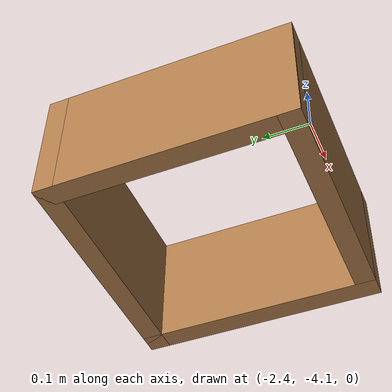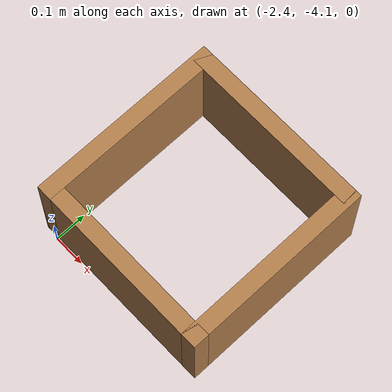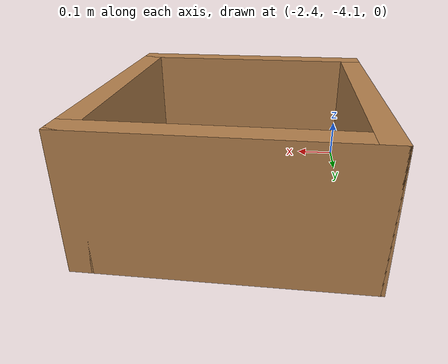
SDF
<?xml version='1.0'?>
<sdf version='1.7'>
  <model name='square60'>
    <pose>-1.2225 -2.0475 0 0 -0 0</pose>
    <link name='Wall_21'>
      <collision name='Wall_21_Collision'>
        <geometry>
          <box>
            <size>0.6 0.05 0.3</size>
          </box>
        </geometry>
        <pose>0 0 0.15 0 -0 0</pose>
      </collision>
      <visual name='Wall_21_Visual'>
        <pose>0 0 0.15 0 -0 0</pose>
        <geometry>
          <box>
            <size>0.6 0.05 0.3</size>
          </box>
        </geometry>
        <material>
          <script>
            <uri>file://media/materials/scripts/gazebo.material</uri>
            <name>Gazebo/Wood</name>
          </script>
          <ambient>1 1 1 1</ambient>
        </material>
        <meta>
          <layer>0</layer>
        </meta>
      </visual>
      <pose>-1.1975 -1.7475 0 0 -0 -1.5708</pose>
    </link>
    <link name='Wall_23'>
      <collision name='Wall_23_Collision'>
        <geometry>
          <box>
            <size>0.6 0.05 0.3</size>
          </box>
        </geometry>
        <pose>0 0 0.15 0 -0 0</pose>
      </collision>
      <visual name='Wall_23_Visual'>
        <pose>0 0 0.15 0 -0 0</pose>
        <geometry>
          <box>
            <size>0.6 0.05 0.3</size>
          </box>
        </geometry>
        <material>
          <script>
            <uri>file://media/materials/scripts/gazebo.material</uri>
            <name>Gazebo/Wood</name>
          </script>
          <ambient>1 1 1 1</ambient>
        </material>
        <meta>
          <layer>0</layer>
        </meta>
      </visual>
      <pose>-0.9225 -2.0225 0 0 -0 0</pose>
    </link>
    <link name='Wall_25'>
      <collision name='Wall_25_Collision'>
        <geometry>
          <box>
            <size>0.6 0.05 0.3</size>
          </box>
        </geometry>
        <pose>0 0 0.15 0 -0 0</pose>
      </collision>
      <visual name='Wall_25_Visual'>
        <pose>0 0 0.15 0 -0 0</pose>
        <geometry>
          <box>
            <size>0.6 0.05 0.3</size>
          </box>
        </geometry>
        <material>
          <script>
            <uri>file://media/materials/scripts/gazebo.material</uri>
            <name>Gazebo/Wood</name>
          </script>
          <ambient>1 1 1 1</ambient>
        </material>
        <meta>
          <layer>0</layer>
        </meta>
      </visual>
      <pose>-0.9225 -1.4725 0 0 -0 0</pose>
    </link>
    <link name='Wall_27'>
      <collision name='Wall_27_Collision'>
        <geometry>
          <box>
            <size>0.6 0.05 0.3</size>
          </box>
        </geometry>
        <pose>0 0 0.15 0 -0 0</pose>
      </collision>
      <visual name='Wall_27_Visual'>
        <pose>0 0 0.15 0 -0 0</pose>
        <geometry>
          <box>
            <size>0.6 0.05 0.3</size>
          </box>
        </geometry>
        <material>
          <script>
            <uri>file://media/materials/scripts/gazebo.material</uri>
            <name>Gazebo/Wood</name>
          </script>
          <ambient>1 1 1 1</ambient>
        </material>
        <meta>
          <layer>0</layer>
        </meta>
      </visual>
      <pose>-0.6475 -1.7475 0 0 -0 -1.5708</pose>
    </link>
    <static>1</static>
  </model>
</sdf>
